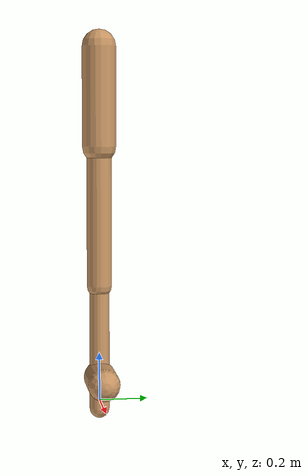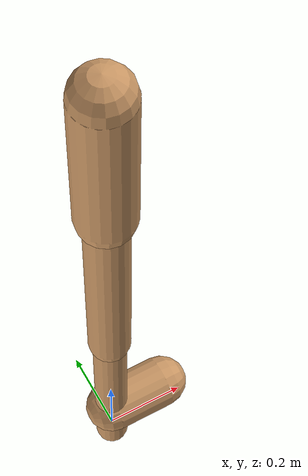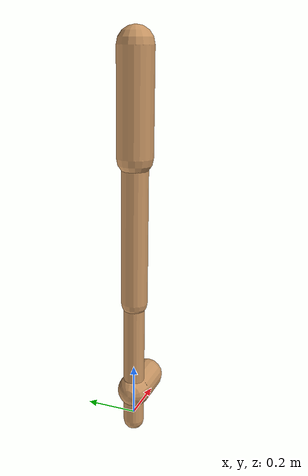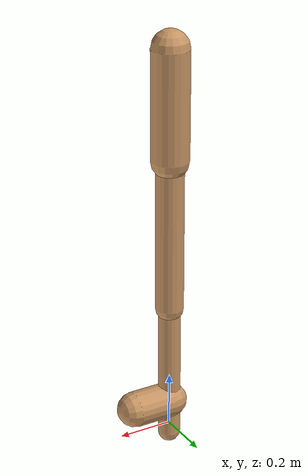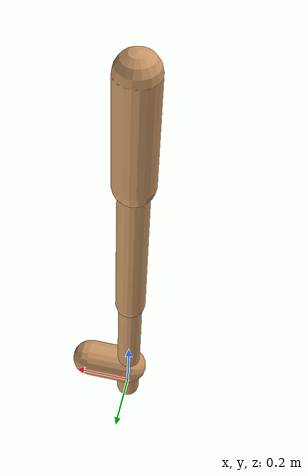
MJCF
<mujoco model="walker2d">
  <compiler angle="degree" coordinate="global" inertiafromgeom="true" />
  <default>
    <joint armature="0.01" damping=".1" limited="true" />
    <geom conaffinity="0" condim="3" contype="1" density="1000" friction="0.8 .1 .1" rgba="0.8 0.6 .4 1" />
  </default>
  <option integrator="RK4" timestep="0.002" />
  <worldbody>

    <body name="torso" pos="0 0 0.251222513461252">
      <joint armature="0" axis="1 0 0" damping="0" limited="false" name="ignorex" pos="0 0 0" stiffness="0" type="slide" />
      <joint armature="0" axis="0 0 1" damping="0" limited="false" name="ignorez" pos="0 0 0" ref="1.25" stiffness="0" type="slide" />
      <joint armature="0" axis="0 1 0" damping="0" limited="false" name="ignorey" pos="0 0 0" stiffness="0" type="hinge" />
      <geom fromto="0 0 1.45 0 0 1.05" name="torso_geom" size="0.0691008370473536" type="capsule" />
      <body name="thigh">
        <joint axis="0 -1 0" name="thigh_joint" pos="0 0 1.05" range="-150 0" type="hinge" />
        <geom fromto="0.0 0.0 1.05 0.0 0.0 0.48099986204467005" name="thigh_geom" size="0.051321428295176635" type="capsule" />
        <body name="leg" pos="0.0 0.0 -0.11900013795532993">
          <joint axis="0 -1 0" name="leg_joint" pos="0 0 0.6" range="-150 0" type="hinge" />
          <geom fromto="0.0 0.0 0.6 0.0 0.0 -0.03222237550592211" name="leg_geom" size="0.041057142636141304" type="capsule" />
          <body name="foot" pos="0.0 0.0 -0.1322223755059221">
            <joint axis="0 -1 0" name="foot_joint" pos="0 0 0.1" range="-45 45" type="hinge" />
            <geom fromto="0.0 0.0 0.1 0.1449796766395183 0.0 0.1" name="foot_geom" size="0.06530904313849933" type="capsule" />
          </body>
        </body>
      </body>

      <body name="thigh_left">
        <joint axis="0 -1 0" name="thigh_left_joint" pos="0 0 1.05" range="-150 0" type="hinge" />
        <geom fromto="0.0 0.0 1.05 0.0 0.0 0.48099986204467005" name="thigh_left_geom" rgba=".7 .3 .6 1" size="0.051321428295176635" type="capsule" />
        <body name="leg_left" pos="0.0 0.0 -0.11900013795532993">
          <joint axis="0 -1 0" name="leg_left_joint" pos="0 0 0.6" range="-150 0" type="hinge" />
          <geom fromto="0.0 0.0 0.6 0.0 0.0 -0.03222237550592211" name="leg_left_geom" rgba=".7 .3 .6 1" size="0.041057142636141304" type="capsule" />
          <body name="foot_left" pos="0.0 0.0 -0.1322223755059221">
            <joint axis="0 -1 0" name="foot_left_joint" pos="0 0 0.1" range="-45 45" type="hinge" />
            <geom fromto="0.0 0.0 0.1 0.1449796766395183 0.0 0.1" name="foot_left_geom" rgba=".7 .3 .6 1" size="0.06530904313849933" type="capsule" />
          </body>
        </body>
      </body>
    </body>
  </worldbody>
  <actuator>

    <motor ctrllimited="true" ctrlrange="-1.0 1.0" gear="100" joint="thigh_joint" />
    <motor ctrllimited="true" ctrlrange="-1.0 1.0" gear="100" joint="leg_joint" />
    <motor ctrllimited="true" ctrlrange="-1.0 1.0" gear="100" joint="foot_joint" />
    <motor ctrllimited="true" ctrlrange="-1.0 1.0" gear="100" joint="thigh_left_joint" />
    <motor ctrllimited="true" ctrlrange="-1.0 1.0" gear="100" joint="leg_left_joint" />
    <motor ctrllimited="true" ctrlrange="-1.0 1.0" gear="100" joint="foot_left_joint" />

  </actuator>
</mujoco>
